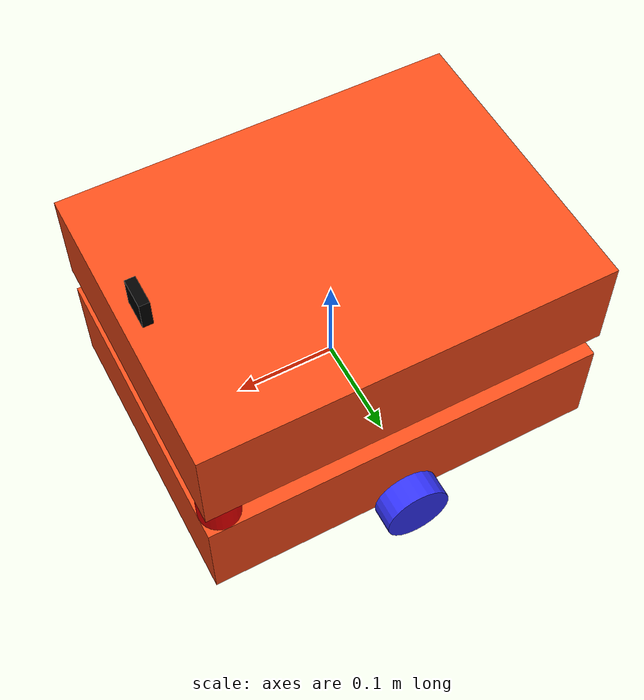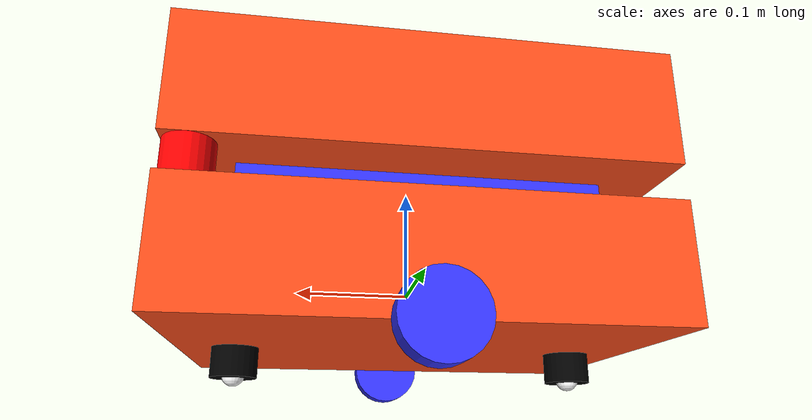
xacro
<?xml version="1.0"?>
<robot xmlns:xacro="http://www.ros.org/wiki/xacro"  name="bot">
    <xacro:include filename="robot_core.xacro" />
    <xacro:include filename="gazebo_control.xacro" />
    <xacro:include filename="lidar_front.xacro" />
    <xacro:include filename="lidar_rear.xacro" />
    <xacro:include filename="camera.xacro" />
</robot>

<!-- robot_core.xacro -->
<robot xmlns:xacro="http://www.ros.org/wiki/xacro" >

    <xacro:include filename="inertial_macros.xacro"/>
    <xacro:property name="chassis_length" value="0.4"/>
    <xacro:property name="chassis_width" value="0.3"/>
    <xacro:property name="chassis_height" value="0.1"/>
    <xacro:property name="chassis_mass" value="1.0"/>
    <xacro:property name="wheel_radius" value="0.033"/>
    <xacro:property name="wheel_thickness" value="0.026"/>
    <xacro:property name="wheel_mass" value="0.05"/>
    <xacro:property name="wheel_offset_x" value="0.15"/>
    <xacro:property name="wheel_offset_y" value="0.163"/>
    <xacro:property name="wheel_offset_z" value="0.05"/>
    <xacro:property name="caster_wheel_radius" value="0.01"/>
    <xacro:property name="caster_wheel_mass" value="2"/>
    <xacro:property name="caster_wheel_offset_z" value="0.02295"/>

    <material name="white">
        <color rgba="1 1 1 1" />
    </material>

    <material name="orange">
        <color rgba="1 0.3 0.1 1"/>
    </material>

    <material name="blue">
        <color rgba="0.2 0.2 1 1"/>
    </material>

    <material name="black">
        <color rgba="0 0 0 1"/>
    </material>

    <material name="red">
        <color rgba="1 0 0 1"/>
    </material>

    <!-- BASE LINK -->
    <link name="base_link">
    </link>

    <!-- CHASSIS -->
    <joint name="base_to_chassis" type="fixed">
        <parent link="base_link"/>
        <child link="chassis"/>
        <origin xyz="0 0 0" rpy="0 0 0"/>
    </joint>

    <link name="chassis">
        <visual>
            <geometry>
                <box size="${chassis_length} ${chassis_width} ${chassis_height}"/>
            </geometry>
            <material name="orange"/>
        </visual>
        <collision>
            <geometry>
                <box size="${chassis_length} ${chassis_width} ${chassis_height}"/>
            </geometry>
        </collision>
        <xacro:inertial_box mass="${chassis_mass}" x="${chassis_length}" y="${chassis_width}" z="${chassis_height}">
            <origin xyz="0 0 0" rpy="0 0 0"/>
        </xacro:inertial_box>
    </link>

    <gazebo reference="chassis">
        <material>Gazebo/Orange</material>
    </gazebo>

    <!-- LEFT WHEEL -->
    <joint name="left_wheel_joint" type="continuous">
        <parent link="base_link"/>
        <child link="left_wheel"/>
        <origin xyz="0 ${wheel_offset_y} ${-wheel_offset_z}" rpy="-${pi/2} 0 0" />
        <axis xyz="0 0 1"/>
    </joint>

    <link name="left_wheel">
        <visual>
            <geometry>
                <cylinder radius="${wheel_radius}" length="${wheel_thickness}"/>
            </geometry>
            <material name="blue"/>
        </visual>
        <collision>
            <geometry>
                <sphere radius="${wheel_radius}"/>
            </geometry>
        </collision>
        <xacro:inertial_cylinder mass="${wheel_mass}" length="${wheel_thickness}" radius="${wheel_radius}">
            <origin xyz="0 0 0" rpy="0 0 0"/>
        </xacro:inertial_cylinder>
    </link>

    <gazebo reference="left_wheel">
        <material>Gazebo/Blue</material>
    </gazebo>

    <!-- RIGHT WHEEL -->
    <joint name="right_wheel_joint" type="continuous">
        <parent link="base_link"/>
        <child link="right_wheel"/>
        <origin xyz="0 ${-wheel_offset_y} ${-wheel_offset_z}" rpy="${pi/2} 0 0" />
        <axis xyz="0 0 -1"/>
    </joint>

    <link name="right_wheel">
        <visual>
            <geometry>
                <cylinder radius="${wheel_radius}" length="${wheel_thickness}"/>
            </geometry>
            <material name="blue"/>
        </visual>
        <collision>
            <geometry>
                <sphere radius="${wheel_radius}"/>
            </geometry>
        </collision>
        <xacro:inertial_cylinder mass="${wheel_mass}" length="${wheel_thickness}" radius="${wheel_radius}">
            <origin xyz="0 0 0" rpy="0 0 0"/>
        </xacro:inertial_cylinder>
    </link>

    <gazebo reference="right_wheel">
        <material>Gazebo/Blue</material>
    </gazebo>

    <!-- CONNECT CHASSIS TO CASTER WHEEL FRONT -->
    <joint name="connect_caster_wheel_front_joint" type="fixed">
        <parent link="base_link"/>
        <child link="connect_caster_wheel_front"/>
        <origin xyz="${wheel_offset_x} 0 ${-wheel_offset_z}" rpy="0 0 0" />
    </joint>

    <link name="connect_caster_wheel_front">
        <visual>
            <geometry>
                <cylinder radius="0.02" length="0.052"/>
            </geometry>
            <material name="black"/>
        </visual>
        <collision>
            <geometry>
                <cylinder radius="0.02" length="0.052"/>
            </geometry>
        </collision>
        <xacro:inertial_cylinder mass="0" length="0.052" radius="0.02">
            <origin xyz="0 0 0" rpy="0 0 0"/>
        </xacro:inertial_cylinder>
    </link>

    <gazebo reference="connect_caster_wheel_front">
        <material>Gazebo/Black</material>
    </gazebo>

    <!-- CASTER WHEEL FRONT -->
    <joint name="caster_wheel_front_joint" type="fixed">
        <parent link="connect_caster_wheel_front"/>
        <child link="caster_wheel_front"/>
        <origin xyz="0 0 ${-caster_wheel_offset_z}" rpy="0 0 0" />
    </joint>

    <link name="caster_wheel_front">
        <visual>
            <geometry>
                <sphere radius="${caster_wheel_radius}"/>
            </geometry>
            <material name="white"/>
        </visual>
        <collision>
            <geometry>
                <sphere radius="${caster_wheel_radius}"/>
            </geometry>
        </collision>
        <xacro:inertial_sphere mass="${caster_wheel_mass}" radius="${caster_wheel_radius}">
            <origin xyz="0 0 0" rpy="0 0 0"/>
        </xacro:inertial_sphere>
    </link>

    <gazebo reference="caster_wheel_front">
        <material>Gazebo/White</material>
        <mu1 value="0.001"/>
        <mu2 value="0.001"/>
    </gazebo>

    <!-- CONNECT CHASSIS TO CASTER WHEEL REAR -->
    <joint name="connect_caster_wheel_rear_joint" type="fixed">
        <parent link="base_link"/>
        <child link="connect_caster_wheel_rear"/>
        <origin xyz="${-wheel_offset_x} 0 ${-wheel_offset_z}" rpy="0 0 0" />
    </joint>

    <link name="connect_caster_wheel_rear">
        <visual>
            <geometry>
                <cylinder radius="0.02" length="0.052"/>
            </geometry>
            <material name="black"/>
        </visual>
        <collision>
            <geometry>
                <cylinder radius="0.02" length="0.052"/>
            </geometry>
        </collision>
        <xacro:inertial_cylinder mass="0" length="0.052" radius="0.02">
            <origin xyz="0 0 0" rpy="0 0 0"/>
        </xacro:inertial_cylinder>
    </link>

    <gazebo reference="connect_caster_wheel_rear">
        <material>Gazebo/Black</material>
    </gazebo>

    <!-- CASTER WHEEL REAR -->
    <joint name="caster_wheel_rear_joint" type="fixed">
        <parent link="connect_caster_wheel_rear"/>
        <child link="caster_wheel_rear"/>
        <origin xyz="0 0 ${-caster_wheel_offset_z}" rpy="0 0 0" />
    </joint>

    <link name="caster_wheel_rear">
        <visual>
            <geometry>
                <sphere radius="${caster_wheel_radius}"/>
            </geometry>
            <material name="white"/>
        </visual>
        <collision>
            <geometry>
                <sphere radius="${caster_wheel_radius}"/>
            </geometry>
        </collision>
        <xacro:inertial_sphere mass="${caster_wheel_mass}" radius="${caster_wheel_radius}">
            <origin xyz="0 0 0" rpy="0 0 0"/>
        </xacro:inertial_sphere>
    </link>

    <gazebo reference="caster_wheel_rear">
        <material>Gazebo/White</material>
        <mu1 value="0.001"/>
        <mu2 value="0.001"/>
    </gazebo>

    <!-- Connect chassis to cargo -->
    <joint name="chassis_to_cargo_joint" type="fixed">
        <parent link="base_link"/>
        <child link="connect_cargo"/>
        <origin xyz="0 0 0.065"/>
    </joint>

    <link name="connect_cargo">
        <visual>
            <origin xyz="0 0 0"/>
            <geometry>
                <box size="0.3 0.2 0.03"/>
            </geometry>
            <material name="blue"/>
        </visual>
        <collision>
            <origin xyz="0 0 0"/>
            <geometry>
                <box size="0.3 0.2 0.03"/>
            </geometry>
        </collision>
        <xacro:inertial_box mass="0.1" x="0.3" y="0.2" z="0.03">
            <origin xyz="0 0 0" rpy="0 0 0"/>
        </xacro:inertial_box>
    </link>

    <!-- CARGO -->
    <joint name="cargo_joint" type="fixed">
        <parent link="connect_cargo"/>
        <child link="cargo"/>
        <origin xyz="0 0 0.065"/>
    </joint>

    <link name="cargo">
        <visual>
            <origin xyz="0 0 0"/>
            <geometry>
                <box size="0.4 0.3 0.1"/>
            </geometry>
            <material name="orange"/>
        </visual>
        <collision>
            <origin xyz="0 0 0"/>
            <geometry>
                <box size="0.4 0.3 0.1"/>
            </geometry>
        </collision>
        <xacro:inertial_box mass="0.4" x="0.4" y="0.3" z="0.1">
            <origin xyz="0 0 0" rpy="0 0 0"/>
        </xacro:inertial_box>
    </link>

    <gazebo reference="cargo">
        <material>Gazebo/Orange</material>
    </gazebo>
</robot>

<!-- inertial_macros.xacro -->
<robot xmlns:xacro="http://www.ros.org/wiki/xacro" >

    <!-- Specify some standard inertial calculations https://en.wikipedia.org/wiki/List_of_moments_of_inertia -->
    <!-- These make use of xacro's mathematical functionality -->

    <xacro:macro name="inertial_sphere" params="mass radius *origin">
        <inertial>
            <xacro:insert_block name="origin"/>
            <mass value="${mass}" />
            <inertia ixx="${(2/5) * mass * (radius*radius)}" ixy="0.0" ixz="0.0"
                    iyy="${(2/5) * mass * (radius*radius)}" iyz="0.0"
                    izz="${(2/5) * mass * (radius*radius)}" />
        </inertial>
    </xacro:macro>

    <xacro:macro name="inertial_box" params="mass x y z *origin">
        <inertial>
            <xacro:insert_block name="origin"/>
            <mass value="${mass}" />
            <inertia ixx="${(1/12) * mass * (y*y+z*z)}" ixy="0.0" ixz="0.0"
                    iyy="${(1/12) * mass * (x*x+z*z)}" iyz="0.0"
                    izz="${(1/12) * mass * (x*x+y*y)}" />
        </inertial>
    </xacro:macro>

    <xacro:macro name="inertial_cylinder" params="mass length radius *origin">
        <inertial>
            <xacro:insert_block name="origin"/>
            <mass value="${mass}" />
            <inertia ixx="${(1/12) * mass * (3*radius*radius + length*length)}" ixy="0.0" ixz="0.0"
                    iyy="${(1/12) * mass * (3*radius*radius + length*length)}" iyz="0.0"
                    izz="${(1/2) * mass * (radius*radius)}" />
        </inertial>
    </xacro:macro>

</robot>

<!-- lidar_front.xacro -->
<robot xmlns:xacro="http://www.ros.org/wiki/xacro" >

    <joint name="laser_front_joint" type="fixed">
        <parent link="base_link"/>
        <child link="laser_front_frame"/>
        <origin xyz="0.18 0.13 0.065" rpy="0 0 0"/>
    </joint>

    <link name="laser_front_frame">
        <visual>
            <geometry>
                <cylinder radius="0.02" length="0.03"/>
            </geometry>
            <material name="red"/>
        </visual>
        <collision>
            <geometry>
                <cylinder radius="0.02" length="0.03"/>
            </geometry>
        </collision>
        <xacro:inertial_cylinder mass="0" length="0.03" radius="0.02">
            <origin xyz="0 0 0" rpy="0 0 0"/>
        </xacro:inertial_cylinder>
    </link>

    <gazebo reference="laser_front_frame">
        <material>Gazebo/Red</material>

        <sensor name="laser_front" type="ray">
            <pose> 0 0 0 0 0 0 </pose>
            <visualize>true</visualize>
            <update_rate>10</update_rate>
            <ray>
                <scan>
                    <horizontal>
                        <samples>360</samples>
                        <resolution>1</resolution>
                        <min_angle>-1.57</min_angle>
                        <max_angle>3.14</max_angle>
                    </horizontal>
                </scan>
                <range>
                    <min>0.1</min>
                    <max>12</max>
                </range>
            </ray>

            <plugin name="laser_front_controller" filename="libgazebo_ros_ray_sensor.so">
                <ros>
                    <argument>~/out:=scan_front</argument>
                </ros>
                <output_type>sensor_msgs/LaserScan</output_type>
                <frame_name>laser_front_frame</frame_name>
            </plugin>
        </sensor>
    </gazebo>

</robot>

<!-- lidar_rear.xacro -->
<robot xmlns:xacro="http://www.ros.org/wiki/xacro" >

    <joint name="laser_rear_joint" type="fixed">
        <parent link="base_link"/>
        <child link="laser_rear_frame"/>
        <origin xyz="-0.18 -0.13 0.065" rpy="0 0 0"/>
    </joint>

    <link name="laser_rear_frame">
        <visual>
            <geometry>
                <cylinder radius="0.02" length="0.03"/>
            </geometry>
            <material name="red"/>
        </visual>
        <collision>
            <geometry>
                <cylinder radius="0.02" length="0.03"/>
            </geometry>
        </collision>
        <xacro:inertial_cylinder mass="0" length="0.03" radius="0.02">
            <origin xyz="0 0 0" rpy="0 0 0"/>
        </xacro:inertial_cylinder>
    </link>

    <gazebo reference="laser_rear_frame">
        <material>Gazebo/Red</material>

        <sensor name="laser_rear" type="ray">
            <pose> 0 0 0 0 0 0 </pose>
            <visualize>true</visualize>
            <update_rate>10</update_rate>
            <ray>
                <scan>
                    <horizontal>
                        <samples>360</samples>
                        <resolution>1</resolution>
                        <min_angle>-4.71</min_angle>
                        <max_angle>0</max_angle>
                    </horizontal>
                </scan>
                <range>
                    <min>0.1</min>
                    <max>12</max>
                </range>
            </ray>

            <plugin name="laser_rear_controller" filename="libgazebo_ros_ray_sensor.so">
                <ros>
                    <argument>~/out:=scan_rear</argument>
                </ros>
                <output_type>sensor_msgs/LaserScan</output_type>
                <frame_name>laser_rear_frame</frame_name>
            </plugin>
        </sensor>
    </gazebo>

</robot>

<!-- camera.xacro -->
<robot xmlns:xacro="http://www.ros.org/wiki/xacro" >

    <joint name="camera_joint" type="fixed">
        <parent link="chassis"/>
        <child link="camera_link"/>
        <origin xyz="0.18 0 0.2" rpy="0 0 0"/>
    </joint>

    <link name="camera_link">
        <visual>
            <geometry>
                <box size="0.010 0.03 0.03"/>
            </geometry>
            <material name="black"/>
        </visual>
        <visual>
            <origin xyz="0 0 -0.05"/>
            <geometry>
                <cylinder radius="0.002" length="0.1"/>
            </geometry>
            <material name="black"/>
        </visual>
    </link>

    <joint name="camera_optical_joint" type="fixed">
        <parent link="camera_link"/>
        <child link="camera_link_optical"/>
        <origin xyz="0 0 0" rpy="${-pi/2} 0 ${-pi/2}"/>
    </joint>

    <link name="camera_link_optical"></link>

    <gazebo reference="camera_link">
        <material>Gazebo/Black</material>

        <sensor name="camera" type="camera">
            <pose> 0 0 0 0 0 0 </pose>
            <visualize>true</visualize>
            <update_rate>10</update_rate>
            <camera>
                <horizontal_fov>1.089</horizontal_fov>
                <image>
                    <format>R8G8B8</format>
                    <width>640</width>
                    <height>480</height>
                </image>
                <clip>
                    <near>0.05</near>
                    <far>8.0</far>
                </clip>
            </camera>
            <plugin name="camera_controller" filename="libgazebo_ros_camera.so">
                <frame_name>camera_link_optical</frame_name>
            </plugin>
        </sensor>
    </gazebo>

</robot>
